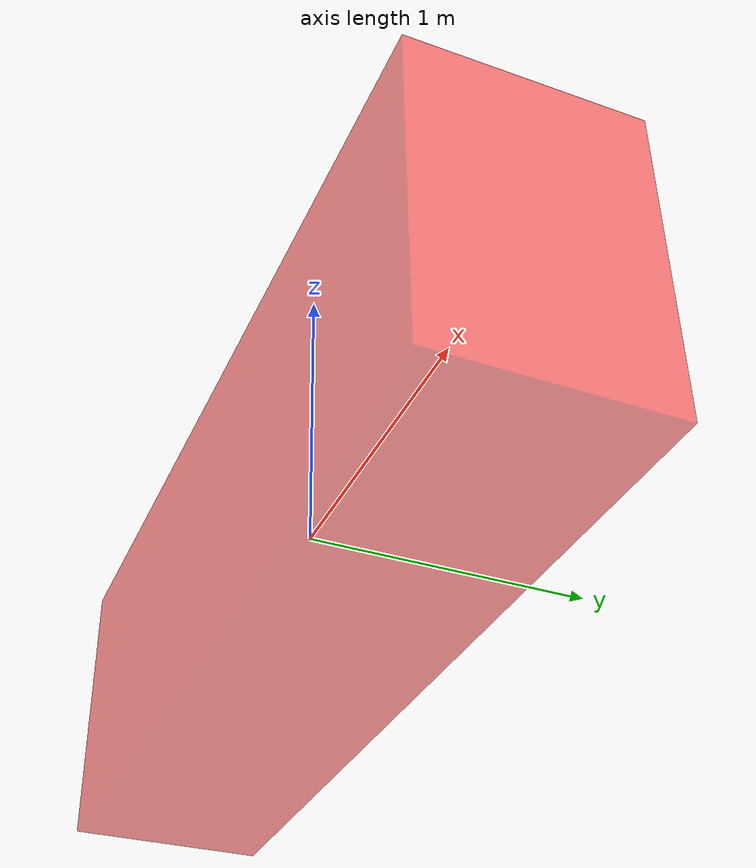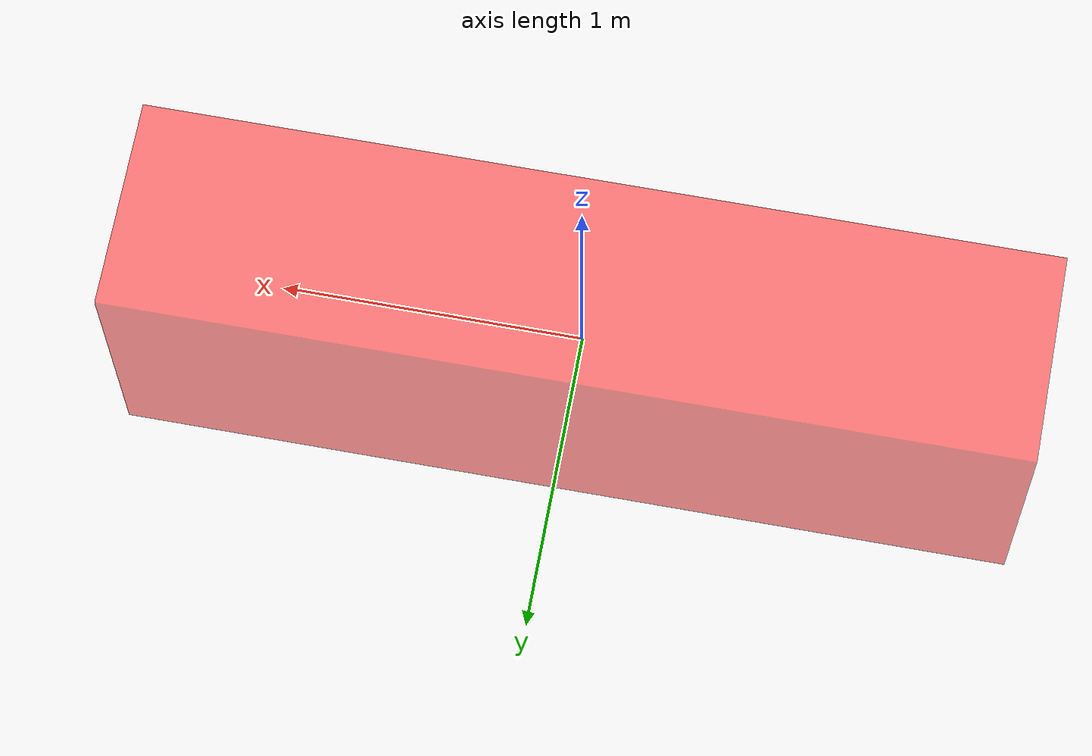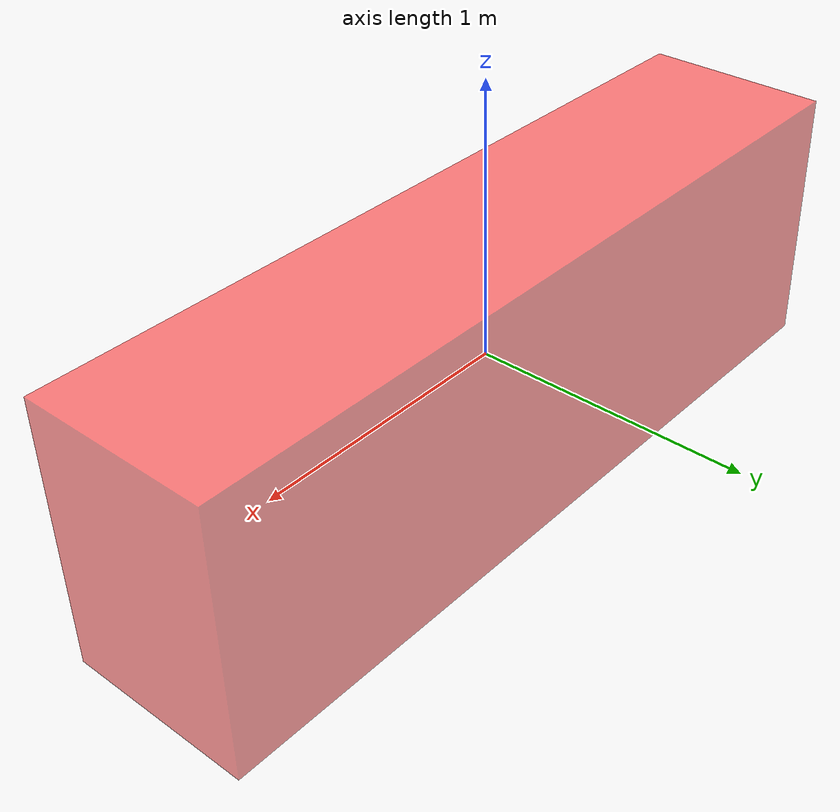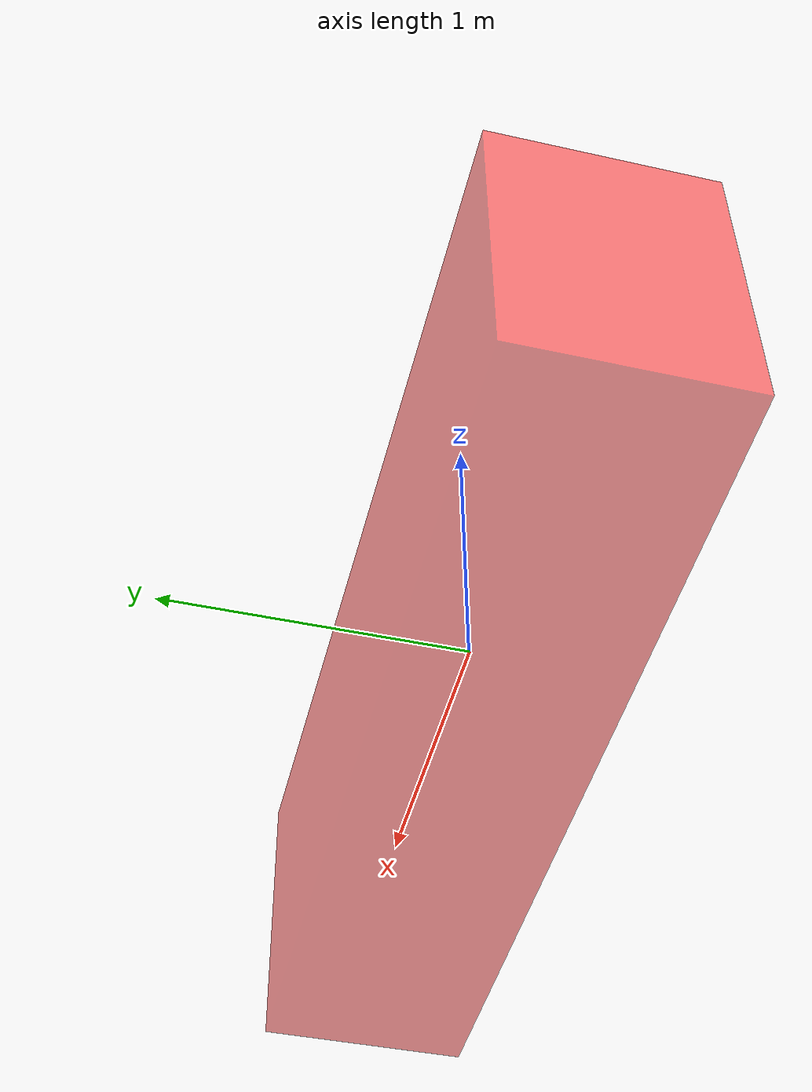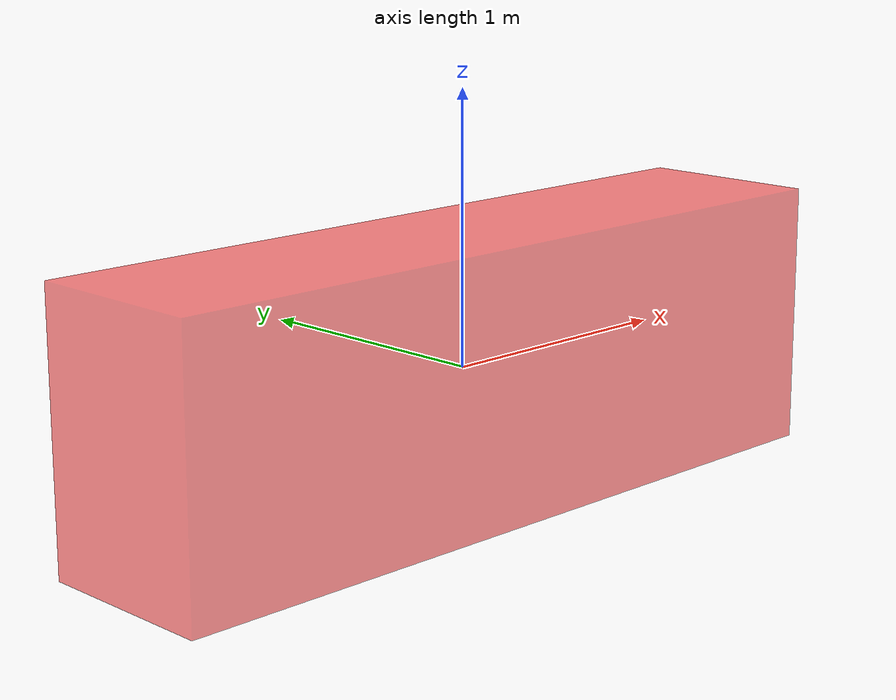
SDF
<?xml version="1.0" ?>
<sdf version="1.6">
  <model name="red_cube_long_3">
    <static>true</static>
    <link name="link">
      <visual name="visual">
        <geometry>
          <box>
            <size>3 0.7 1</size>
          </box>
        </geometry>
        <material>
          <ambient>1 0 0 0.5</ambient>
          <diffuse>1 0 0 0.5</diffuse>
          <specular>0.1 0.1 0.1 0.5</specular>
        </material>
      </visual>
    </link>
  </model>
</sdf>
